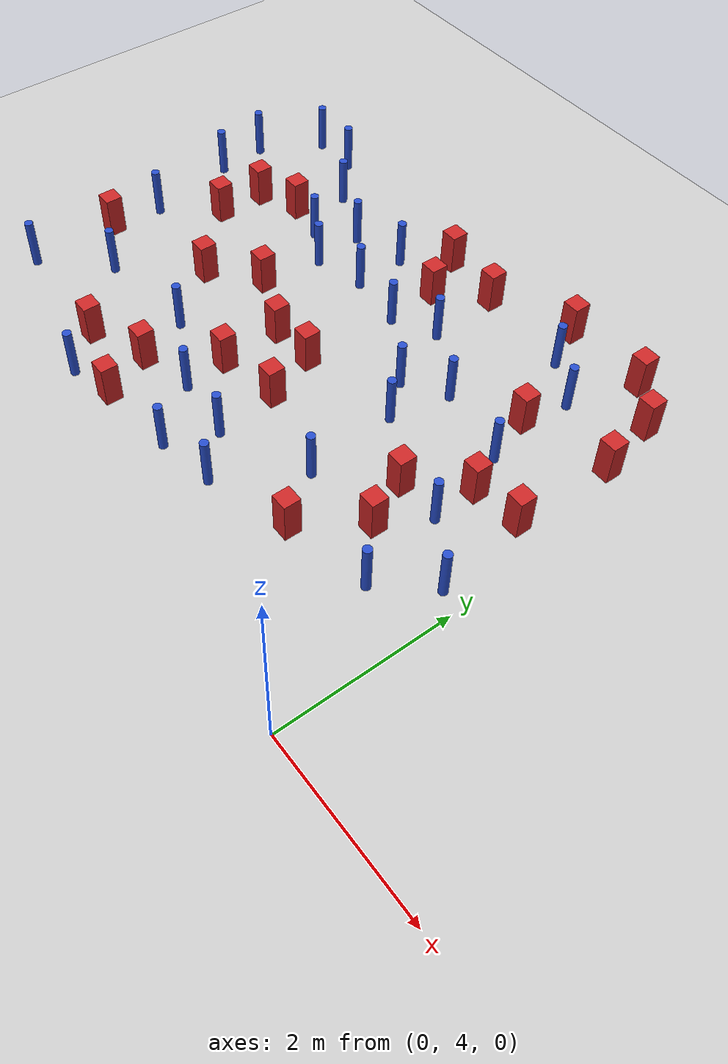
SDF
<sdf version="1.6">
 <world name="default">
  <model name="ground_plane">
   <static>1</static>
   <link name="link">
    <collision name="collision">
     <geometry><plane><normal>0 0 1</normal><size>100 100</size></plane></geometry>
     <surface><friction><ode><mu>100</mu><mu2>50</mu2></ode></friction></surface>
    </collision>
    <visual name="visual">
     <cast_shadows>0</cast_shadows>
     <geometry><plane><normal>0 0 1</normal><size>100 100</size></plane></geometry>
     <material>
      <ambient>1.0 1.0 1.0 1.0</ambient>
      <diffuse>0.8 0.8 0.8 1.0</diffuse>
      <specular>0.01 0.01 0.01 1.000000</specular>
     </material>
    </visual>
   </link>
  </model>
  <model name="square_post_obstacle1">
   <static>true</static>
   <pose>-3.92318719585 6.10322206568 8.22691968438e-08 7.22125133819e-06 -7.54495500217e-07 2.29674213826e-05</pose>
   <link name="link">
    <pose>0 0 0.25 0 -0 0</pose>
    <inertial>
     <mass>100</mass>
     <inertia>
      <ixx>0.166667</ixx>
      <ixy>0</ixy>
      <ixz>0</ixz>
      <iyy>0.166667</iyy>
      <iyz>0</iyz>
      <izz>0.166667</izz>
     </inertia>
    </inertial>
    <collision name="collision"><geometry><box><size>.2 .2 .5</size></box></geometry></collision>
    <visual name="visual">
     <geometry><box><size>.2 .2 .5</size></box></geometry>
     <material>
      <script><name>Gazebo/Red</name><uri>file://media/materials/scripts/gazebo.material</uri></script>
     </material>
    </visual>
   </link>
  </model>
  <model name="pole_obstacle4">
   <static>true</static>
   <pose>-3.32747737507 4.94547146037 2.88873142074e-08 -9.90536692062e-09 4.60219948937e-07 -1.20965994985e-07</pose>
   <link name="link">
    <pose>0 0 0.3 0 -0 0</pose>
    <inertial>
     <mass>1</mass>
     <inertia><ixx>0.145833</ixx><ixy>0</ixy><ixz>0</ixz><iyy>0.145833</iyy><iyz>0</iyz><izz>0.125</izz></inertia>
    </inertial>
    <collision name="collision">
     <geometry><cylinder><radius>0.05</radius><length>.6</length></cylinder></geometry>
    </collision>
    <visual name="visual">
     <geometry><cylinder><radius>0.05</radius><length>.6</length></cylinder></geometry>
     <material>
      <script><name>Gazebo/Blue</name><uri>file://media/materials/scripts/gazebo.material</uri></script>
     </material>
    </visual>
   </link>
  </model>
  <model name="square_post_obstacle9">
   <static>true</static>
   <pose>-2.95118306738 9.09099483135 8.22691968438e-08 7.22125133819e-06 -7.54495500217e-07 2.29674213826e-05</pose>
   <link name="link">
    <pose>0 0 0.25 0 -0 0</pose>
    <inertial>
     <mass>100</mass>
     <inertia>
      <ixx>0.166667</ixx>
      <ixy>0</ixy>
      <ixz>0</ixz>
      <iyy>0.166667</iyy>
      <iyz>0</iyz>
      <izz>0.166667</izz>
     </inertia>
    </inertial>
    <collision name="collision"><geometry><box><size>.2 .2 .5</size></box></geometry></collision>
    <visual name="visual">
     <geometry><box><size>.2 .2 .5</size></box></geometry>
     <material>
      <script><name>Gazebo/Red</name><uri>file://media/materials/scripts/gazebo.material</uri></script>
     </material>
    </visual>
   </link>
  </model>
  <model name="square_post_obstacle16">
   <static>true</static>
   <pose>-1.69396350508 5.36391911132 8.22691968438e-08 7.2212513382e-06 -7.54495500217e-07 2.29674213826e-05</pose>
   <link name="link">
    <pose>0 0 0.25 0 -0 0</pose>
    <inertial>
     <mass>100</mass>
     <inertia>
      <ixx>0.166667</ixx>
      <ixy>0</ixy>
      <ixz>0</ixz>
      <iyy>0.166667</iyy>
      <iyz>0</iyz>
      <izz>0.166667</izz>
     </inertia>
    </inertial>
    <collision name="collision"><geometry><box><size>.2 .2 .5</size></box></geometry></collision>
    <visual name="visual">
     <geometry><box><size>.2 .2 .5</size></box></geometry>
     <material>
      <script><name>Gazebo/Red</name><uri>file://media/materials/scripts/gazebo.material</uri></script>
     </material>
    </visual>
   </link>
  </model>
  <model name="pole_obstacle14">
   <static>true</static>
   <pose>-6.680665818 5.23387129462 2.88873142074e-08 -9.90536690842e-09 4.60219948965e-07 -1.20965994976e-07</pose>
   <link name="link">
    <pose>0 0 0.3 0 -0 0</pose>
    <inertial>
     <mass>1</mass>
     <inertia><ixx>0.145833</ixx><ixy>0</ixy><ixz>0</ixz><iyy>0.145833</iyy><iyz>0</iyz><izz>0.125</izz></inertia>
    </inertial>
    <collision name="collision">
     <geometry><cylinder><radius>0.05</radius><length>.6</length></cylinder></geometry>
    </collision>
    <visual name="visual">
     <geometry><cylinder><radius>0.05</radius><length>.6</length></cylinder></geometry>
     <material>
      <script><name>Gazebo/Blue</name><uri>file://media/materials/scripts/gazebo.material</uri></script>
     </material>
    </visual>
   </link>
  </model>
  <model name="square_post_obstacle24">
   <static>true</static>
   <pose>-3.96279926447 6.8308532378 8.22691968438e-08 7.22125133819e-06 -7.54495500217e-07 2.29674213826e-05</pose>
   <link name="link">
    <pose>0 0 0.25 0 -0 0</pose>
    <inertial>
     <mass>100</mass>
     <inertia>
      <ixx>0.166667</ixx>
      <ixy>0</ixy>
      <ixz>0</ixz>
      <iyy>0.166667</iyy>
      <iyz>0</iyz>
      <izz>0.166667</izz>
     </inertia>
    </inertial>
    <collision name="collision"><geometry><box><size>.2 .2 .5</size></box></geometry></collision>
    <visual name="visual">
     <geometry><box><size>.2 .2 .5</size></box></geometry>
     <material>
      <script><name>Gazebo/Red</name><uri>file://media/materials/scripts/gazebo.material</uri></script>
     </material>
    </visual>
   </link>
  </model>
  <model name="pole_obstacle18">
   <static>true</static>
   <pose>-6.94188928809 8.61827318614 2.88873142074e-08 -9.9053668967e-09 4.60219948993e-07 -1.20965994957e-07</pose>
   <link name="link">
    <pose>0 0 0.3 0 -0 0</pose>
    <inertial>
     <mass>1</mass>
     <inertia><ixx>0.145833</ixx><ixy>0</ixy><ixz>0</ixz><iyy>0.145833</iyy><iyz>0</iyz><izz>0.125</izz></inertia>
    </inertial>
    <collision name="collision">
     <geometry><cylinder><radius>0.05</radius><length>.6</length></cylinder></geometry>
    </collision>
    <visual name="visual">
     <geometry><cylinder><radius>0.05</radius><length>.6</length></cylinder></geometry>
     <material>
      <script><name>Gazebo/Blue</name><uri>file://media/materials/scripts/gazebo.material</uri></script>
     </material>
    </visual>
   </link>
  </model>
  <model name="square_post_obstacle28">
   <static>true</static>
   <pose>-6.6841204937 6.29382803994 8.22691968438e-08 7.2212513382e-06 -7.54495500217e-07 2.29674213826e-05</pose>
   <link name="link">
    <pose>0 0 0.25 0 -0 0</pose>
    <inertial>
     <mass>100</mass>
     <inertia>
      <ixx>0.166667</ixx>
      <ixy>0</ixy>
      <ixz>0</ixz>
      <iyy>0.166667</iyy>
      <iyz>0</iyz>
      <izz>0.166667</izz>
     </inertia>
    </inertial>
    <collision name="collision"><geometry><box><size>.2 .2 .5</size></box></geometry></collision>
    <visual name="visual">
     <geometry><box><size>.2 .2 .5</size></box></geometry>
     <material>
      <script><name>Gazebo/Red</name><uri>file://media/materials/scripts/gazebo.material</uri></script>
     </material>
    </visual>
   </link>
  </model>
  <model name="pole_obstacle32">
   <static>true</static>
   <pose>-3.38771883126 7.99462689383 2.88873142074e-08 -9.90536689866e-09 4.60219948988e-07 -1.20965994962e-07</pose>
   <link name="link">
    <pose>0 0 0.3 0 -0 0</pose>
    <inertial>
     <mass>1</mass>
     <inertia><ixx>0.145833</ixx><ixy>0</ixy><ixz>0</ixz><iyy>0.145833</iyy><iyz>0</iyz><izz>0.125</izz></inertia>
    </inertial>
    <collision name="collision">
     <geometry><cylinder><radius>0.05</radius><length>.6</length></cylinder></geometry>
    </collision>
    <visual name="visual">
     <geometry><cylinder><radius>0.05</radius><length>.6</length></cylinder></geometry>
     <material>
      <script><name>Gazebo/Blue</name><uri>file://media/materials/scripts/gazebo.material</uri></script>
     </material>
    </visual>
   </link>
  </model>
  <model name="square_post_obstacle37">
   <static>true</static>
   <pose>-0.364493390778 8.3667359219 8.22691968438e-08 7.22125133819e-06 -7.54495500217e-07 2.29674213826e-05</pose>
   <link name="link">
    <pose>0 0 0.25 0 -0 0</pose>
    <inertial>
     <mass>100</mass>
     <inertia>
      <ixx>0.166667</ixx>
      <ixy>0</ixy>
      <ixz>0</ixz>
      <iyy>0.166667</iyy>
      <iyz>0</iyz>
      <izz>0.166667</izz>
     </inertia>
    </inertial>
    <collision name="collision"><geometry><box><size>.2 .2 .5</size></box></geometry></collision>
    <visual name="visual">
     <geometry><box><size>.2 .2 .5</size></box></geometry>
     <material>
      <script><name>Gazebo/Red</name><uri>file://media/materials/scripts/gazebo.material</uri></script>
     </material>
    </visual>
   </link>
  </model>
  <model name="pole_obstacle37">
   <static>true</static>
   <pose>-2.88926127242 8.24488207635 2.88873142074e-08 -9.90536692318e-09 4.6021994893e-07 -1.20965994988e-07</pose>
   <link name="link">
    <pose>0 0 0.3 0 -0 0</pose>
    <inertial>
     <mass>1</mass>
     <inertia><ixx>0.145833</ixx><ixy>0</ixy><ixz>0</ixz><iyy>0.145833</iyy><iyz>0</iyz><izz>0.125</izz></inertia>
    </inertial>
    <collision name="collision">
     <geometry><cylinder><radius>0.05</radius><length>.6</length></cylinder></geometry>
    </collision>
    <visual name="visual">
     <geometry><cylinder><radius>0.05</radius><length>.6</length></cylinder></geometry>
     <material>
      <script><name>Gazebo/Blue</name><uri>file://media/materials/scripts/gazebo.material</uri></script>
     </material>
    </visual>
   </link>
  </model>
  <model name="pole_obstacle41">
   <static>true</static>
   <pose>-2.65165789935 5.06268338332 2.88873142074e-08 -9.90536689859e-09 4.60219948989e-07 -1.20965994961e-07</pose>
   <link name="link">
    <pose>0 0 0.3 0 -0 0</pose>
    <inertial>
     <mass>1</mass>
     <inertia><ixx>0.145833</ixx><ixy>0</ixy><ixz>0</ixz><iyy>0.145833</iyy><iyz>0</iyz><izz>0.125</izz></inertia>
    </inertial>
    <collision name="collision">
     <geometry><cylinder><radius>0.05</radius><length>.6</length></cylinder></geometry>
    </collision>
    <visual name="visual">
     <geometry><cylinder><radius>0.05</radius><length>.6</length></cylinder></geometry>
     <material>
      <script><name>Gazebo/Blue</name><uri>file://media/materials/scripts/gazebo.material</uri></script>
     </material>
    </visual>
   </link>
  </model>
  <model name="pole_obstacle45">
   <static>true</static>
   <pose>-1.16799015663 7.56392326182 2.88873142074e-08 -9.90536689852e-09 4.60219948989e-07 -1.2096599496e-07</pose>
   <link name="link">
    <pose>0 0 0.3 0 -0 0</pose>
    <inertial>
     <mass>1</mass>
     <inertia><ixx>0.145833</ixx><ixy>0</ixy><ixz>0</ixz><iyy>0.145833</iyy><iyz>0</iyz><izz>0.125</izz></inertia>
    </inertial>
    <collision name="collision">
     <geometry><cylinder><radius>0.05</radius><length>.6</length></cylinder></geometry>
    </collision>
    <visual name="visual">
     <geometry><cylinder><radius>0.05</radius><length>.6</length></cylinder></geometry>
     <material>
      <script><name>Gazebo/Blue</name><uri>file://media/materials/scripts/gazebo.material</uri></script>
     </material>
    </visual>
   </link>
  </model>
  <model name="pole_obstacle54">
   <static>true</static>
   <pose>-6.01261843919 5.91382881985 2.88873142074e-08 -9.90536690842e-09 4.60219948965e-07 -1.20965994976e-07</pose>
   <link name="link">
    <pose>0 0 0.3 0 -0 0</pose>
    <inertial>
     <mass>1</mass>
     <inertia><ixx>0.145833</ixx><ixy>0</ixy><ixz>0</ixz><iyy>0.145833</iyy><iyz>0</iyz><izz>0.125</izz></inertia>
    </inertial>
    <collision name="collision">
     <geometry><cylinder><radius>0.05</radius><length>.6</length></cylinder></geometry>
    </collision>
    <visual name="visual">
     <geometry><cylinder><radius>0.05</radius><length>.6</length></cylinder></geometry>
     <material>
      <script><name>Gazebo/Blue</name><uri>file://media/materials/scripts/gazebo.material</uri></script>
     </material>
    </visual>
   </link>
  </model>
  <model name="square_post_obstacle61">
   <static>true</static>
   <pose>-1.45544882068 6.57386196193 8.22691968438e-08 7.2212513382e-06 -7.54495500217e-07 2.29674213826e-05</pose>
   <link name="link">
    <pose>0 0 0.25 0 -0 0</pose>
    <inertial>
     <mass>100</mass>
     <inertia>
      <ixx>0.166667</ixx>
      <ixy>0</ixy>
      <ixz>0</ixz>
      <iyy>0.166667</iyy>
      <iyz>0</iyz>
      <izz>0.166667</izz>
     </inertia>
    </inertial>
    <collision name="collision"><geometry><box><size>.2 .2 .5</size></box></geometry></collision>
    <visual name="visual">
     <geometry><box><size>.2 .2 .5</size></box></geometry>
     <material>
      <script><name>Gazebo/Red</name><uri>file://media/materials/scripts/gazebo.material</uri></script>
     </material>
    </visual>
   </link>
  </model>
  <model name="pole_obstacle59">
   <static>true</static>
   <pose>-1.7805644084 9.0081873259 2.88873142074e-08 -9.90536690474e-09 4.60219948974e-07 -1.2096599497e-07</pose>
   <link name="link">
    <pose>0 0 0.3 0 -0 0</pose>
    <inertial>
     <mass>1</mass>
     <inertia><ixx>0.145833</ixx><ixy>0</ixy><ixz>0</ixz><iyy>0.145833</iyy><iyz>0</iyz><izz>0.125</izz></inertia>
    </inertial>
    <collision name="collision">
     <geometry><cylinder><radius>0.05</radius><length>.6</length></cylinder></geometry>
    </collision>
    <visual name="visual">
     <geometry><cylinder><radius>0.05</radius><length>.6</length></cylinder></geometry>
     <material>
      <script><name>Gazebo/Blue</name><uri>file://media/materials/scripts/gazebo.material</uri></script>
     </material>
    </visual>
   </link>
  </model>
  <model name="pole_obstacle89">
   <static>true</static>
   <pose>-4.11752006702 8.70291778051 2.88873142074e-08 -9.9053668967e-09 4.60219948993e-07 -1.20965994957e-07</pose>
   <link name="link">
    <pose>0 0 0.3 0 -0 0</pose>
    <inertial>
     <mass>1</mass>
     <inertia><ixx>0.145833</ixx><ixy>0</ixy><ixz>0</ixz><iyy>0.145833</iyy><iyz>0</iyz><izz>0.125</izz></inertia>
    </inertial>
    <collision name="collision">
     <geometry><cylinder><radius>0.05</radius><length>.6</length></cylinder></geometry>
    </collision>
    <visual name="visual">
     <geometry><cylinder><radius>0.05</radius><length>.6</length></cylinder></geometry>
     <material>
      <script><name>Gazebo/Blue</name><uri>file://media/materials/scripts/gazebo.material</uri></script>
     </material>
    </visual>
   </link>
  </model>
  <model name="pole_obstacle93">
   <static>true</static>
   <pose>-4.748808727 8.54163741249 2.88873142074e-08 -9.9053668967e-09 4.60219948993e-07 -1.20965994957e-07</pose>
   <link name="link">
    <pose>0 0 0.3 0 -0 0</pose>
    <inertial>
     <mass>1</mass>
     <inertia><ixx>0.145833</ixx><ixy>0</ixy><ixz>0</ixz><iyy>0.145833</iyy><iyz>0</iyz><izz>0.125</izz></inertia>
    </inertial>
    <collision name="collision">
     <geometry><cylinder><radius>0.05</radius><length>.6</length></cylinder></geometry>
    </collision>
    <visual name="visual">
     <geometry><cylinder><radius>0.05</radius><length>.6</length></cylinder></geometry>
     <material>
      <script><name>Gazebo/Blue</name><uri>file://media/materials/scripts/gazebo.material</uri></script>
     </material>
    </visual>
   </link>
  </model>
  <model name="pole_obstacle94">
   <static>true</static>
   <pose>-2.22666016097 7.05140017026 2.88873142074e-08 -9.90536689859e-09 4.60219948989e-07 -1.20965994961e-07</pose>
   <link name="link">
    <pose>0 0 0.3 0 -0 0</pose>
    <inertial>
     <mass>1</mass>
     <inertia><ixx>0.145833</ixx><ixy>0</ixy><ixz>0</ixz><iyy>0.145833</iyy><iyz>0</iyz><izz>0.125</izz></inertia>
    </inertial>
    <collision name="collision">
     <geometry><cylinder><radius>0.05</radius><length>.6</length></cylinder></geometry>
    </collision>
    <visual name="visual">
     <geometry><cylinder><radius>0.05</radius><length>.6</length></cylinder></geometry>
     <material>
      <script><name>Gazebo/Blue</name><uri>file://media/materials/scripts/gazebo.material</uri></script>
     </material>
    </visual>
   </link>
  </model>
  <model name="square_post_obstacle86">
   <static>true</static>
   <pose>-3.4271530813 8.62339217717 8.22691968438e-08 7.2212513382e-06 -7.54495500217e-07 2.29674213826e-05</pose>
   <link name="link">
    <pose>0 0 0.25 0 -0 0</pose>
    <inertial>
     <mass>100</mass>
     <inertia>
      <ixx>0.166667</ixx>
      <ixy>0</ixy>
      <ixz>0</ixz>
      <iyy>0.166667</iyy>
      <iyz>0</iyz>
      <izz>0.166667</izz>
     </inertia>
    </inertial>
    <collision name="collision"><geometry><box><size>.2 .2 .5</size></box></geometry></collision>
    <visual name="visual">
     <geometry><box><size>.2 .2 .5</size></box></geometry>
     <material>
      <script><name>Gazebo/Red</name><uri>file://media/materials/scripts/gazebo.material</uri></script>
     </material>
    </visual>
   </link>
  </model>
  <model name="pole_obstacle101">
   <static>true</static>
   <pose>-6.64450626305 6.91198784381 2.88873142074e-08 -9.90536690842e-09 4.60219948965e-07 -1.20965994976e-07</pose>
   <link name="link">
    <pose>0 0 0.3 0 -0 0</pose>
    <inertial>
     <mass>1</mass>
     <inertia><ixx>0.145833</ixx><ixy>0</ixy><ixz>0</ixz><iyy>0.145833</iyy><iyz>0</iyz><izz>0.125</izz></inertia>
    </inertial>
    <collision name="collision">
     <geometry><cylinder><radius>0.05</radius><length>.6</length></cylinder></geometry>
    </collision>
    <visual name="visual">
     <geometry><cylinder><radius>0.05</radius><length>.6</length></cylinder></geometry>
     <material>
      <script><name>Gazebo/Blue</name><uri>file://media/materials/scripts/gazebo.material</uri></script>
     </material>
    </visual>
   </link>
  </model>
  <model name="pole_obstacle108">
   <static>true</static>
   <pose>-0.244324881327 6.11331587808 2.88873142074e-08 -9.90536689703e-09 4.60219948992e-07 -1.20965994959e-07</pose>
   <link name="link">
    <pose>0 0 0.3 0 -0 0</pose>
    <inertial>
     <mass>1</mass>
     <inertia><ixx>0.145833</ixx><ixy>0</ixy><ixz>0</ixz><iyy>0.145833</iyy><iyz>0</iyz><izz>0.125</izz></inertia>
    </inertial>
    <collision name="collision">
     <geometry><cylinder><radius>0.05</radius><length>.6</length></cylinder></geometry>
    </collision>
    <visual name="visual">
     <geometry><cylinder><radius>0.05</radius><length>.6</length></cylinder></geometry>
     <material>
      <script><name>Gazebo/Blue</name><uri>file://media/materials/scripts/gazebo.material</uri></script>
     </material>
    </visual>
   </link>
  </model>
  <model name="pole_obstacle114">
   <static>true</static>
   <pose>-5.47666873834 8.87687345916 2.88873142074e-08 -9.9053668967e-09 4.60219948993e-07 -1.20965994957e-07</pose>
   <link name="link">
    <pose>0 0 0.3 0 -0 0</pose>
    <inertial>
     <mass>1</mass>
     <inertia><ixx>0.145833</ixx><ixy>0</ixy><ixz>0</ixz><iyy>0.145833</iyy><iyz>0</iyz><izz>0.125</izz></inertia>
    </inertial>
    <collision name="collision">
     <geometry><cylinder><radius>0.05</radius><length>.6</length></cylinder></geometry>
    </collision>
    <visual name="visual">
     <geometry><cylinder><radius>0.05</radius><length>.6</length></cylinder></geometry>
     <material>
      <script><name>Gazebo/Blue</name><uri>file://media/materials/scripts/gazebo.material</uri></script>
     </material>
    </visual>
   </link>
  </model>
  <model name="square_post_obstacle102">
   <static>true</static>
   <pose>-4.26174544369 4.85645241731 8.22691968438e-08 7.2212513382e-06 -7.54495500217e-07 2.29674213826e-05</pose>
   <link name="link">
    <pose>0 0 0.25 0 -0 0</pose>
    <inertial>
     <mass>100</mass>
     <inertia>
      <ixx>0.166667</ixx>
      <ixy>0</ixy>
      <ixz>0</ixz>
      <iyy>0.166667</iyy>
      <iyz>0</iyz>
      <izz>0.166667</izz>
     </inertia>
    </inertial>
    <collision name="collision"><geometry><box><size>.2 .2 .5</size></box></geometry></collision>
    <visual name="visual">
     <geometry><box><size>.2 .2 .5</size></box></geometry>
     <material>
      <script><name>Gazebo/Red</name><uri>file://media/materials/scripts/gazebo.material</uri></script>
     </material>
    </visual>
   </link>
  </model>
  <model name="square_post_obstacle108">
   <static>true</static>
   <pose>-5.18919935576 5.16452784856 8.22691968438e-08 7.2212513382e-06 -7.54495500217e-07 2.29674213826e-05</pose>
   <link name="link">
    <pose>0 0 0.25 0 -0 0</pose>
    <inertial>
     <mass>100</mass>
     <inertia>
      <ixx>0.166667</ixx>
      <ixy>0</ixy>
      <ixz>0</ixz>
      <iyy>0.166667</iyy>
      <iyz>0</iyz>
      <izz>0.166667</izz>
     </inertia>
    </inertial>
    <collision name="collision"><geometry><box><size>.2 .2 .5</size></box></geometry></collision>
    <visual name="visual">
     <geometry><box><size>.2 .2 .5</size></box></geometry>
     <material>
      <script><name>Gazebo/Red</name><uri>file://media/materials/scripts/gazebo.material</uri></script>
     </material>
    </visual>
   </link>
  </model>
  <model name="pole_obstacle127">
   <static>true</static>
   <pose>-0.714834375082 5.56820709737 2.88873142074e-08 -9.90536689661e-09 4.60219948993e-07 -1.20965994957e-07</pose>
   <link name="link">
    <pose>0 0 0.3 0 -0 0</pose>
    <inertial>
     <mass>1</mass>
     <inertia><ixx>0.145833</ixx><ixy>0</ixy><ixz>0</ixz><iyy>0.145833</iyy><iyz>0</iyz><izz>0.125</izz></inertia>
    </inertial>
    <collision name="collision">
     <geometry><cylinder><radius>0.05</radius><length>.6</length></cylinder></geometry>
    </collision>
    <visual name="visual">
     <geometry><cylinder><radius>0.05</radius><length>.6</length></cylinder></geometry>
     <material>
      <script><name>Gazebo/Blue</name><uri>file://media/materials/scripts/gazebo.material</uri></script>
     </material>
    </visual>
   </link>
  </model>
  <model name="pole_obstacle129">
   <static>true</static>
   <pose>-3.87198349732 5.58258474712 2.88873142074e-08 -9.90536692062e-09 4.60219948937e-07 -1.20965994985e-07</pose>
   <link name="link">
    <pose>0 0 0.3 0 -0 0</pose>
    <inertial>
     <mass>1</mass>
     <inertia><ixx>0.145833</ixx><ixy>0</ixy><ixz>0</ixz><iyy>0.145833</iyy><iyz>0</iyz><izz>0.125</izz></inertia>
    </inertial>
    <collision name="collision">
     <geometry><cylinder><radius>0.05</radius><length>.6</length></cylinder></geometry>
    </collision>
    <visual name="visual">
     <geometry><cylinder><radius>0.05</radius><length>.6</length></cylinder></geometry>
     <material>
      <script><name>Gazebo/Blue</name><uri>file://media/materials/scripts/gazebo.material</uri></script>
     </material>
    </visual>
   </link>
  </model>
  <model name="pole_obstacle130">
   <static>true</static>
   <pose>-5.99169569158 9.34348227522 2.88873142074e-08 -9.9053668967e-09 4.60219948993e-07 -1.20965994957e-07</pose>
   <link name="link">
    <pose>0 0 0.3 0 -0 0</pose>
    <inertial>
     <mass>1</mass>
     <inertia><ixx>0.145833</ixx><ixy>0</ixy><ixz>0</ixz><iyy>0.145833</iyy><iyz>0</iyz><izz>0.125</izz></inertia>
    </inertial>
    <collision name="collision">
     <geometry><cylinder><radius>0.05</radius><length>.6</length></cylinder></geometry>
    </collision>
    <visual name="visual">
     <geometry><cylinder><radius>0.05</radius><length>.6</length></cylinder></geometry>
     <material>
      <script><name>Gazebo/Blue</name><uri>file://media/materials/scripts/gazebo.material</uri></script>
     </material>
    </visual>
   </link>
  </model>
  <model name="square_post_obstacle117">
   <static>true</static>
   <pose>-3.72348721313 9.17899535463 8.22691968438e-08 7.2212513382e-06 -7.54495500217e-07 2.29674213826e-05</pose>
   <link name="link">
    <pose>0 0 0.25 0 -0 0</pose>
    <inertial>
     <mass>100</mass>
     <inertia>
      <ixx>0.166667</ixx>
      <ixy>0</ixy>
      <ixz>0</ixz>
      <iyy>0.166667</iyy>
      <iyz>0</iyz>
      <izz>0.166667</izz>
     </inertia>
    </inertial>
    <collision name="collision"><geometry><box><size>.2 .2 .5</size></box></geometry></collision>
    <visual name="visual">
     <geometry><box><size>.2 .2 .5</size></box></geometry>
     <material>
      <script><name>Gazebo/Red</name><uri>file://media/materials/scripts/gazebo.material</uri></script>
     </material>
    </visual>
   </link>
  </model>
  <model name="pole_obstacle140">
   <static>true</static>
   <pose>-2.11094239083 5.95054240738 2.88873142074e-08 -9.90536689859e-09 4.60219948989e-07 -1.20965994961e-07</pose>
   <link name="link">
    <pose>0 0 0.3 0 -0 0</pose>
    <inertial>
     <mass>1</mass>
     <inertia><ixx>0.145833</ixx><ixy>0</ixy><ixz>0</ixz><iyy>0.145833</iyy><iyz>0</iyz><izz>0.125</izz></inertia>
    </inertial>
    <collision name="collision">
     <geometry><cylinder><radius>0.05</radius><length>.6</length></cylinder></geometry>
    </collision>
    <visual name="visual">
     <geometry><cylinder><radius>0.05</radius><length>.6</length></cylinder></geometry>
     <material>
      <script><name>Gazebo/Blue</name><uri>file://media/materials/scripts/gazebo.material</uri></script>
     </material>
    </visual>
   </link>
  </model>
  <model name="pole_obstacle142">
   <static>true</static>
   <pose>-2.09350917954 7.75827922354 2.88873142074e-08 -9.90536689859e-09 4.60219948989e-07 -1.20965994961e-07</pose>
   <link name="link">
    <pose>0 0 0.3 0 -0 0</pose>
    <inertial>
     <mass>1</mass>
     <inertia><ixx>0.145833</ixx><ixy>0</ixy><ixz>0</ixz><iyy>0.145833</iyy><iyz>0</iyz><izz>0.125</izz></inertia>
    </inertial>
    <collision name="collision">
     <geometry><cylinder><radius>0.05</radius><length>.6</length></cylinder></geometry>
    </collision>
    <visual name="visual">
     <geometry><cylinder><radius>0.05</radius><length>.6</length></cylinder></geometry>
     <material>
      <script><name>Gazebo/Blue</name><uri>file://media/materials/scripts/gazebo.material</uri></script>
     </material>
    </visual>
   </link>
  </model>
  <model name="pole_obstacle145">
   <static>true</static>
   <pose>-1.26196088534 8.67268815534 2.88873142074e-08 -9.90536690474e-09 4.60219948974e-07 -1.2096599497e-07</pose>
   <link name="link">
    <pose>0 0 0.3 0 -0 0</pose>
    <inertial>
     <mass>1</mass>
     <inertia><ixx>0.145833</ixx><ixy>0</ixy><ixz>0</ixz><iyy>0.145833</iyy><iyz>0</iyz><izz>0.125</izz></inertia>
    </inertial>
    <collision name="collision">
     <geometry><cylinder><radius>0.05</radius><length>.6</length></cylinder></geometry>
    </collision>
    <visual name="visual">
     <geometry><cylinder><radius>0.05</radius><length>.6</length></cylinder></geometry>
     <material>
      <script><name>Gazebo/Blue</name><uri>file://media/materials/scripts/gazebo.material</uri></script>
     </material>
    </visual>
   </link>
  </model>
  <model name="square_post_obstacle140">
   <static>true</static>
   <pose>-4.49472581709 5.42919086002 8.22691968438e-08 7.22125133819e-06 -7.54495500217e-07 2.29674213826e-05</pose>
   <link name="link">
    <pose>0 0 0.25 0 -0 0</pose>
    <inertial>
     <mass>100</mass>
     <inertia>
      <ixx>0.166667</ixx>
      <ixy>0</ixy>
      <ixz>0</ixz>
      <iyy>0.166667</iyy>
      <iyz>0</iyz>
      <izz>0.166667</izz>
     </inertia>
    </inertial>
    <collision name="collision"><geometry><box><size>.2 .2 .5</size></box></geometry></collision>
    <visual name="visual">
     <geometry><box><size>.2 .2 .5</size></box></geometry>
     <material>
      <script><name>Gazebo/Red</name><uri>file://media/materials/scripts/gazebo.material</uri></script>
     </material>
    </visual>
   </link>
  </model>
  <model name="pole_obstacle151">
   <static>true</static>
   <pose>-2.56083638065 7.4540598208 2.88873142074e-08 -9.90536689859e-09 4.60219948989e-07 -1.20965994961e-07</pose>
   <link name="link">
    <pose>0 0 0.3 0 -0 0</pose>
    <inertial>
     <mass>1</mass>
     <inertia><ixx>0.145833</ixx><ixy>0</ixy><ixz>0</ixz><iyy>0.145833</iyy><iyz>0</iyz><izz>0.125</izz></inertia>
    </inertial>
    <collision name="collision">
     <geometry><cylinder><radius>0.05</radius><length>.6</length></cylinder></geometry>
    </collision>
    <visual name="visual">
     <geometry><cylinder><radius>0.05</radius><length>.6</length></cylinder></geometry>
     <material>
      <script><name>Gazebo/Blue</name><uri>file://media/materials/scripts/gazebo.material</uri></script>
     </material>
    </visual>
   </link>
  </model>
  <model name="square_post_obstacle141">
   <static>true</static>
   <pose>-6.12164264997 7.50396573815 8.22691968438e-08 7.22125133819e-06 -7.54495500217e-07 2.29674213826e-05</pose>
   <link name="link">
    <pose>0 0 0.25 0 -0 0</pose>
    <inertial>
     <mass>100</mass>
     <inertia>
      <ixx>0.166667</ixx>
      <ixy>0</ixy>
      <ixz>0</ixz>
      <iyy>0.166667</iyy>
      <iyz>0</iyz>
      <izz>0.166667</izz>
     </inertia>
    </inertial>
    <collision name="collision"><geometry><box><size>.2 .2 .5</size></box></geometry></collision>
    <visual name="visual">
     <geometry><box><size>.2 .2 .5</size></box></geometry>
     <material>
      <script><name>Gazebo/Red</name><uri>file://media/materials/scripts/gazebo.material</uri></script>
     </material>
    </visual>
   </link>
  </model>
  <model name="pole_obstacle158">
   <static>true</static>
   <pose>-0.932223796516 6.58723440808 2.88873142074e-08 -9.90536689661e-09 4.60219948993e-07 -1.20965994957e-07</pose>
   <link name="link">
    <pose>0 0 0.3 0 -0 0</pose>
    <inertial>
     <mass>1</mass>
     <inertia><ixx>0.145833</ixx><ixy>0</ixy><ixz>0</ixz><iyy>0.145833</iyy><iyz>0</iyz><izz>0.125</izz></inertia>
    </inertial>
    <collision name="collision">
     <geometry><cylinder><radius>0.05</radius><length>.6</length></cylinder></geometry>
    </collision>
    <visual name="visual">
     <geometry><cylinder><radius>0.05</radius><length>.6</length></cylinder></geometry>
     <material>
      <script><name>Gazebo/Blue</name><uri>file://media/materials/scripts/gazebo.material</uri></script>
     </material>
    </visual>
   </link>
  </model>
  <model name="square_post_obstacle155">
   <static>true</static>
   <pose>-6.11200306331 8.07333083578 8.22691968438e-08 7.22125133819e-06 -7.54495500217e-07 2.29674213826e-05</pose>
   <link name="link">
    <pose>0 0 0.25 0 -0 0</pose>
    <inertial>
     <mass>100</mass>
     <inertia>
      <ixx>0.166667</ixx>
      <ixy>0</ixy>
      <ixz>0</ixz>
      <iyy>0.166667</iyy>
      <iyz>0</iyz>
      <izz>0.166667</izz>
     </inertia>
    </inertial>
    <collision name="collision"><geometry><box><size>.2 .2 .5</size></box></geometry></collision>
    <visual name="visual">
     <geometry><box><size>.2 .2 .5</size></box></geometry>
     <material>
      <script><name>Gazebo/Red</name><uri>file://media/materials/scripts/gazebo.material</uri></script>
     </material>
    </visual>
   </link>
  </model>
  <model name="pole_obstacle166">
   <static>true</static>
   <pose>-6.54731439685 9.33942401652 2.88873142074e-08 -9.9053668967e-09 4.60219948993e-07 -1.20965994957e-07</pose>
   <link name="link">
    <pose>0 0 0.3 0 -0 0</pose>
    <inertial>
     <mass>1</mass>
     <inertia><ixx>0.145833</ixx><ixy>0</ixy><ixz>0</ixz><iyy>0.145833</iyy><iyz>0</iyz><izz>0.125</izz></inertia>
    </inertial>
    <collision name="collision">
     <geometry><cylinder><radius>0.05</radius><length>.6</length></cylinder></geometry>
    </collision>
    <visual name="visual">
     <geometry><cylinder><radius>0.05</radius><length>.6</length></cylinder></geometry>
     <material>
      <script><name>Gazebo/Blue</name><uri>file://media/materials/scripts/gazebo.material</uri></script>
     </material>
    </visual>
   </link>
  </model>
  <model name="pole_obstacle168">
   <static>true</static>
   <pose>-3.11617007021 5.50422614489 2.88873142074e-08 -9.90536692062e-09 4.60219948937e-07 -1.20965994985e-07</pose>
   <link name="link">
    <pose>0 0 0.3 0 -0 0</pose>
    <inertial>
     <mass>1</mass>
     <inertia><ixx>0.145833</ixx><ixy>0</ixy><ixz>0</ixz><iyy>0.145833</iyy><iyz>0</iyz><izz>0.125</izz></inertia>
    </inertial>
    <collision name="collision">
     <geometry><cylinder><radius>0.05</radius><length>.6</length></cylinder></geometry>
    </collision>
    <visual name="visual">
     <geometry><cylinder><radius>0.05</radius><length>.6</length></cylinder></geometry>
     <material>
      <script><name>Gazebo/Blue</name><uri>file://media/materials/scripts/gazebo.material</uri></script>
     </material>
    </visual>
   </link>
  </model>
  <model name="pole_obstacle170">
   <static>true</static>
   <pose>-4.6865639984 7.92634239211 2.88873142074e-08 -9.90536690842e-09 4.60219948965e-07 -1.20965994976e-07</pose>
   <link name="link">
    <pose>0 0 0.3 0 -0 0</pose>
    <inertial>
     <mass>1</mass>
     <inertia><ixx>0.145833</ixx><ixy>0</ixy><ixz>0</ixz><iyy>0.145833</iyy><iyz>0</iyz><izz>0.125</izz></inertia>
    </inertial>
    <collision name="collision">
     <geometry><cylinder><radius>0.05</radius><length>.6</length></cylinder></geometry>
    </collision>
    <visual name="visual">
     <geometry><cylinder><radius>0.05</radius><length>.6</length></cylinder></geometry>
     <material>
      <script><name>Gazebo/Blue</name><uri>file://media/materials/scripts/gazebo.material</uri></script>
     </material>
    </visual>
   </link>
  </model>
  <model name="pole_obstacle175">
   <static>true</static>
   <pose>-4.07832317566 8.07333524273 2.88873142074e-08 -9.9053668967e-09 4.60219948993e-07 -1.20965994957e-07</pose>
   <link name="link">
    <pose>0 0 0.3 0 -0 0</pose>
    <inertial>
     <mass>1</mass>
     <inertia><ixx>0.145833</ixx><ixy>0</ixy><ixz>0</ixz><iyy>0.145833</iyy><iyz>0</iyz><izz>0.125</izz></inertia>
    </inertial>
    <collision name="collision">
     <geometry><cylinder><radius>0.05</radius><length>.6</length></cylinder></geometry>
    </collision>
    <visual name="visual">
     <geometry><cylinder><radius>0.05</radius><length>.6</length></cylinder></geometry>
     <material>
      <script><name>Gazebo/Blue</name><uri>file://media/materials/scripts/gazebo.material</uri></script>
     </material>
    </visual>
   </link>
  </model>
  <model name="pole_obstacle176">
   <static>true</static>
   <pose>-4.74619907877 6.03480780532 2.88873142074e-08 -9.90536690842e-09 4.60219948965e-07 -1.20965994976e-07</pose>
   <link name="link">
    <pose>0 0 0.3 0 -0 0</pose>
    <inertial>
     <mass>1</mass>
     <inertia><ixx>0.145833</ixx><ixy>0</ixy><ixz>0</ixz><iyy>0.145833</iyy><iyz>0</iyz><izz>0.125</izz></inertia>
    </inertial>
    <collision name="collision">
     <geometry><cylinder><radius>0.05</radius><length>.6</length></cylinder></geometry>
    </collision>
    <visual name="visual">
     <geometry><cylinder><radius>0.05</radius><length>.6</length></cylinder></geometry>
     <material>
      <script><name>Gazebo/Blue</name><uri>file://media/materials/scripts/gazebo.material</uri></script>
     </material>
    </visual>
   </link>
  </model>
  <model name="square_post_obstacle166">
   <static>true</static>
   <pose>-5.29158157276 6.73492573318 8.22691968438e-08 7.2212513382e-06 -7.54495500217e-07 2.29674213826e-05</pose>
   <link name="link">
    <pose>0 0 0.25 0 -0 0</pose>
    <inertial>
     <mass>100</mass>
     <inertia>
      <ixx>0.166667</ixx>
      <ixy>0</ixy>
      <ixz>0</ixz>
      <iyy>0.166667</iyy>
      <iyz>0</iyz>
      <izz>0.166667</izz>
     </inertia>
    </inertial>
    <collision name="collision"><geometry><box><size>.2 .2 .5</size></box></geometry></collision>
    <visual name="visual">
     <geometry><box><size>.2 .2 .5</size></box></geometry>
     <material>
      <script><name>Gazebo/Red</name><uri>file://media/materials/scripts/gazebo.material</uri></script>
     </material>
    </visual>
   </link>
  </model>
  <model name="pole_obstacle185">
   <static>true</static>
   <pose>-6.87786953605 8.01210580514 2.88873142074e-08 -9.90536690354e-09 4.60219948977e-07 -1.20965994967e-07</pose>
   <link name="link">
    <pose>0 0 0.3 0 -0 0</pose>
    <inertial>
     <mass>1</mass>
     <inertia><ixx>0.145833</ixx><ixy>0</ixy><ixz>0</ixz><iyy>0.145833</iyy><iyz>0</iyz><izz>0.125</izz></inertia>
    </inertial>
    <collision name="collision">
     <geometry><cylinder><radius>0.05</radius><length>.6</length></cylinder></geometry>
    </collision>
    <visual name="visual">
     <geometry><cylinder><radius>0.05</radius><length>.6</length></cylinder></geometry>
     <material>
      <script><name>Gazebo/Blue</name><uri>file://media/materials/scripts/gazebo.material</uri></script>
     </material>
    </visual>
   </link>
  </model>
  <model name="square_post_obstacle175">
   <static>true</static>
   <pose>-3.19576528671 6.23280493329 8.22691968438e-08 7.2212513382e-06 -7.54495500217e-07 2.29674213826e-05</pose>
   <link name="link">
    <pose>0 0 0.25 0 -0 0</pose>
    <inertial>
     <mass>100</mass>
     <inertia>
      <ixx>0.166667</ixx>
      <ixy>0</ixy>
      <ixz>0</ixz>
      <iyy>0.166667</iyy>
      <iyz>0</iyz>
      <izz>0.166667</izz>
     </inertia>
    </inertial>
    <collision name="collision"><geometry><box><size>.2 .2 .5</size></box></geometry></collision>
    <visual name="visual">
     <geometry><box><size>.2 .2 .5</size></box></geometry>
     <material>
      <script><name>Gazebo/Red</name><uri>file://media/materials/scripts/gazebo.material</uri></script>
     </material>
    </visual>
   </link>
  </model>
  <model name="square_post_obstacle178">
   <static>true</static>
   <pose>-3.41863055029 6.84824445513 8.22691968438e-08 7.2212513382e-06 -7.54495500217e-07 2.29674213826e-05</pose>
   <link name="link">
    <pose>0 0 0.25 0 -0 0</pose>
    <inertial>
     <mass>100</mass>
     <inertia>
      <ixx>0.166667</ixx>
      <ixy>0</ixy>
      <ixz>0</ixz>
      <iyy>0.166667</iyy>
      <iyz>0</iyz>
      <izz>0.166667</izz>
     </inertia>
    </inertial>
    <collision name="collision"><geometry><box><size>.2 .2 .5</size></box></geometry></collision>
    <visual name="visual">
     <geometry><box><size>.2 .2 .5</size></box></geometry>
     <material>
      <script><name>Gazebo/Red</name><uri>file://media/materials/scripts/gazebo.material</uri></script>
     </material>
    </visual>
   </link>
  </model>
  <model name="square_post_obstacle185">
   <static>true</static>
   <pose>-1.35135197104 8.11612232178 8.22691968438e-08 7.22125133819e-06 -7.54495500217e-07 2.29674213826e-05</pose>
   <link name="link">
    <pose>0 0 0.25 0 -0 0</pose>
    <inertial>
     <mass>100</mass>
     <inertia>
      <ixx>0.166667</ixx>
      <ixy>0</ixy>
      <ixz>0</ixz>
      <iyy>0.166667</iyy>
      <iyz>0</iyz>
      <izz>0.166667</izz>
     </inertia>
    </inertial>
    <collision name="collision"><geometry><box><size>.2 .2 .5</size></box></geometry></collision>
    <visual name="visual">
     <geometry><box><size>.2 .2 .5</size></box></geometry>
     <material>
      <script><name>Gazebo/Red</name><uri>file://media/materials/scripts/gazebo.material</uri></script>
     </material>
    </visual>
   </link>
  </model>
  <model name="square_post_obstacle186">
   <static>true</static>
   <pose>-5.62092498013 8.27896812639 8.22691968438e-08 7.22125133819e-06 -7.54495500217e-07 2.29674213826e-05</pose>
   <link name="link">
    <pose>0 0 0.25 0 -0 0</pose>
    <inertial>
     <mass>100</mass>
     <inertia>
      <ixx>0.166667</ixx>
      <ixy>0</ixy>
      <ixz>0</ixz>
      <iyy>0.166667</iyy>
      <iyz>0</iyz>
      <izz>0.166667</izz>
     </inertia>
    </inertial>
    <collision name="collision"><geometry><box><size>.2 .2 .5</size></box></geometry></collision>
    <visual name="visual">
     <geometry><box><size>.2 .2 .5</size></box></geometry>
     <material>
      <script><name>Gazebo/Red</name><uri>file://media/materials/scripts/gazebo.material</uri></script>
     </material>
    </visual>
   </link>
  </model>
  <model name="square_post_obstacle188">
   <static>true</static>
   <pose>-1.0017262706 9.47434307346 8.22691968438e-08 7.22125133819e-06 -7.54495500217e-07 2.29674213826e-05</pose>
   <link name="link">
    <pose>0 0 0.25 0 -0 0</pose>
    <inertial>
     <mass>100</mass>
     <inertia>
      <ixx>0.166667</ixx>
      <ixy>0</ixy>
      <ixz>0</ixz>
      <iyy>0.166667</iyy>
      <iyz>0</iyz>
      <izz>0.166667</izz>
     </inertia>
    </inertial>
    <collision name="collision"><geometry><box><size>.2 .2 .5</size></box></geometry></collision>
    <visual name="visual">
     <geometry><box><size>.2 .2 .5</size></box></geometry>
     <material>
      <script><name>Gazebo/Red</name><uri>file://media/materials/scripts/gazebo.material</uri></script>
     </material>
    </visual>
   </link>
  </model>
  <model name="square_post_obstacle196">
   <static>true</static>
   <pose>-0.950608543305 7.1095433838 8.22691968438e-08 7.22125133819e-06 -7.54495500217e-07 2.29674213826e-05</pose>
   <link name="link">
    <pose>0 0 0.25 0 -0 0</pose>
    <inertial>
     <mass>100</mass>
     <inertia>
      <ixx>0.166667</ixx>
      <ixy>0</ixy>
      <ixz>0</ixz>
      <iyy>0.166667</iyy>
      <iyz>0</iyz>
      <izz>0.166667</izz>
     </inertia>
    </inertial>
    <collision name="collision"><geometry><box><size>.2 .2 .5</size></box></geometry></collision>
    <visual name="visual">
     <geometry><box><size>.2 .2 .5</size></box></geometry>
     <material>
      <script><name>Gazebo/Red</name><uri>file://media/materials/scripts/gazebo.material</uri></script>
     </material>
    </visual>
   </link>
  </model>
  <model name="square_post_obstacle199">
   <static>true</static>
   <pose>-4.74570911388 7.18069379645 8.22691968438e-08 7.2212513382e-06 -7.54495500217e-07 2.29674213826e-05</pose>
   <link name="link">
    <pose>0 0 0.25 0 -0 0</pose>
    <inertial>
     <mass>100</mass>
     <inertia>
      <ixx>0.166667</ixx>
      <ixy>0</ixy>
      <ixz>0</ixz>
      <iyy>0.166667</iyy>
      <iyz>0</iyz>
      <izz>0.166667</izz>
     </inertia>
    </inertial>
    <collision name="collision"><geometry><box><size>.2 .2 .5</size></box></geometry></collision>
    <visual name="visual">
     <geometry><box><size>.2 .2 .5</size></box></geometry>
     <material>
      <script><name>Gazebo/Red</name><uri>file://media/materials/scripts/gazebo.material</uri></script>
     </material>
    </visual>
   </link>
  </model>
  <model name="pole_obstacle190">
   <static>true</static>
   <pose>-4.79771869407 4.7198336861 2.88873142074e-08 -9.90536690842e-09 4.60219948965e-07 -1.20965994976e-07</pose>
   <link name="link">
    <pose>0 0 0.3 0 -0 0</pose>
    <inertial>
     <mass>1</mass>
     <inertia><ixx>0.145833</ixx><ixy>0</ixy><ixz>0</ixz><iyy>0.145833</iyy><iyz>0</iyz><izz>0.125</izz></inertia>
    </inertial>
    <collision name="collision">
     <geometry><cylinder><radius>0.05</radius><length>.6</length></cylinder></geometry>
    </collision>
    <visual name="visual">
     <geometry><cylinder><radius>0.05</radius><length>.6</length></cylinder></geometry>
     <material>
      <script><name>Gazebo/Blue</name><uri>file://media/materials/scripts/gazebo.material</uri></script>
     </material>
    </visual>
   </link>
  </model>
  <model name="pole_obstacle206">
   <static>true</static>
   <pose>-5.12680220188 8.18783181566 2.88873142074e-08 -9.9053668967e-09 4.60219948993e-07 -1.20965994957e-07</pose>
   <link name="link">
    <pose>0 0 0.3 0 -0 0</pose>
    <inertial>
     <mass>1</mass>
     <inertia><ixx>0.145833</ixx><ixy>0</ixy><ixz>0</ixz><iyy>0.145833</iyy><iyz>0</iyz><izz>0.125</izz></inertia>
    </inertial>
    <collision name="collision">
     <geometry><cylinder><radius>0.05</radius><length>.6</length></cylinder></geometry>
    </collision>
    <visual name="visual">
     <geometry><cylinder><radius>0.05</radius><length>.6</length></cylinder></geometry>
     <material>
      <script><name>Gazebo/Blue</name><uri>file://media/materials/scripts/gazebo.material</uri></script>
     </material>
    </visual>
   </link>
  </model>
  <model name="square_post_obstacle222">
   <static>true</static>
   <pose>-0.526211967378 9.08026996466 8.22691968438e-08 7.22125133819e-06 -7.54495500217e-07 2.29674213826e-05</pose>
   <link name="link">
    <pose>0 0 0.25 0 -0 0</pose>
    <inertial>
     <mass>100</mass>
     <inertia>
      <ixx>0.166667</ixx>
      <ixy>0</ixy>
      <ixz>0</ixz>
      <iyy>0.166667</iyy>
      <iyz>0</iyz>
      <izz>0.166667</izz>
     </inertia>
    </inertial>
    <collision name="collision"><geometry><box><size>.2 .2 .5</size></box></geometry></collision>
    <visual name="visual">
     <geometry><box><size>.2 .2 .5</size></box></geometry>
     <material>
      <script><name>Gazebo/Red</name><uri>file://media/materials/scripts/gazebo.material</uri></script>
     </material>
    </visual>
   </link>
  </model>
  <model name="square_post_obstacle224">
   <static>true</static>
   <pose>-0.399955967378 7.17573996466 8.22691968438e-08 7.22125133819e-06 -7.54495500217e-07 2.29674213826e-05</pose>
   <link name="link">
    <pose>0 0 0.25 0 -0 0</pose>
    <inertial>
     <mass>100</mass>
     <inertia>
      <ixx>0.166667</ixx>
      <ixy>0</ixy>
      <ixz>0</ixz>
      <iyy>0.166667</iyy>
      <iyz>0</iyz>
      <izz>0.166667</izz>
     </inertia>
    </inertial>
    <collision name="collision"><geometry><box><size>.2 .2 .5</size></box></geometry></collision>
    <visual name="visual">
     <geometry><box><size>.2 .2 .5</size></box></geometry>
     <material>
      <script><name>Gazebo/Red</name><uri>file://media/materials/scripts/gazebo.material</uri></script>
     </material>
    </visual>
   </link>
  </model>
  <model name="square_post_obstacle227">
   <static>true</static>
   <pose>-2.01548996738 9.46652996466 8.22691968438e-08 7.22125133819e-06 -7.54495500217e-07 2.29674213826e-05</pose>
   <link name="link">
    <pose>0 0 0.25 0 -0 0</pose>
    <inertial>
     <mass>100</mass>
     <inertia>
      <ixx>0.166667</ixx>
      <ixy>0</ixy>
      <ixz>0</ixz>
      <iyy>0.166667</iyy>
      <iyz>0</iyz>
      <izz>0.166667</izz>
     </inertia>
    </inertial>
    <collision name="collision"><geometry><box><size>.2 .2 .5</size></box></geometry></collision>
    <visual name="visual">
     <geometry><box><size>.2 .2 .5</size></box></geometry>
     <material>
      <script><name>Gazebo/Red</name><uri>file://media/materials/scripts/gazebo.material</uri></script>
     </material>
    </visual>
   </link>
  </model>
  <model name="square_post_obstacle235">
   <static>true</static>
   <pose>-1.21841996738 6.04322996466 8.22691968438e-08 7.2212513382e-06 -7.54495500217e-07 2.29674213826e-05</pose>
   <link name="link">
    <pose>0 0 0.25 0 -0 0</pose>
    <inertial>
     <mass>100</mass>
     <inertia>
      <ixx>0.166667</ixx>
      <ixy>0</ixy>
      <ixz>0</ixz>
      <iyy>0.166667</iyy>
      <iyz>0</iyz>
      <izz>0.166667</izz>
     </inertia>
    </inertial>
    <collision name="collision"><geometry><box><size>.2 .2 .5</size></box></geometry></collision>
    <visual name="visual">
     <geometry><box><size>.2 .2 .5</size></box></geometry>
     <material>
      <script><name>Gazebo/Red</name><uri>file://media/materials/scripts/gazebo.material</uri></script>
     </material>
    </visual>
   </link>
  </model>
 </world>
</sdf>
